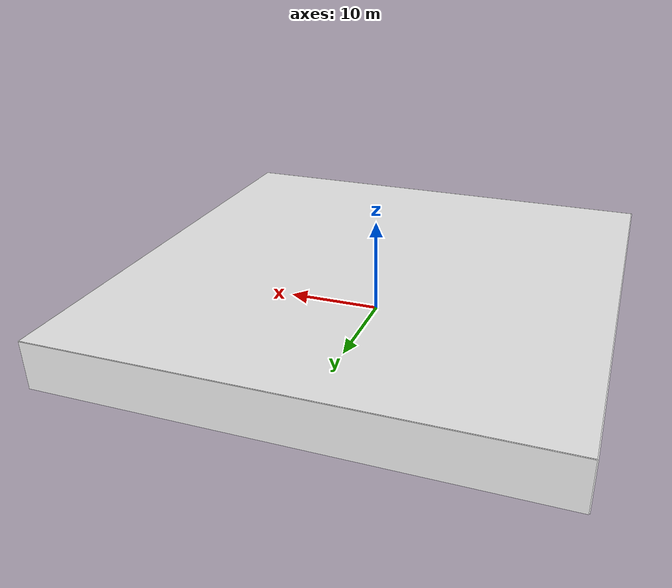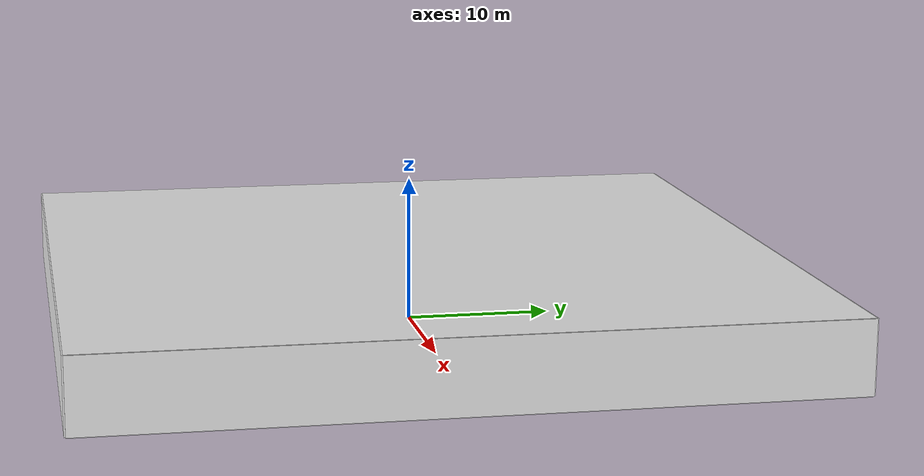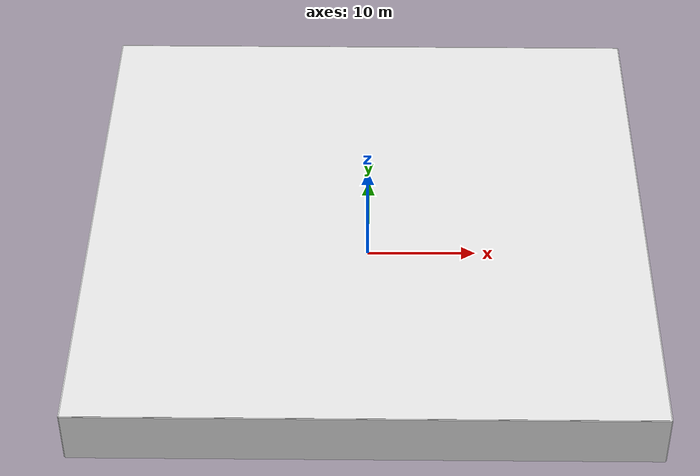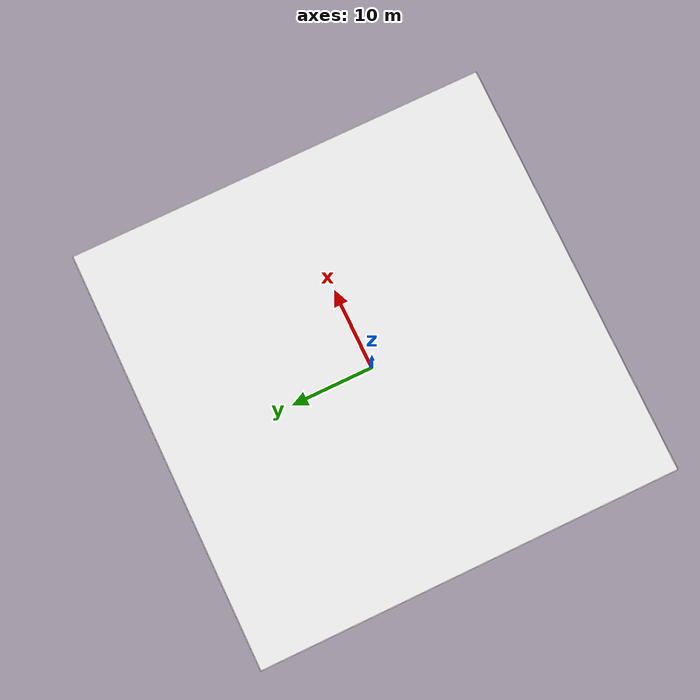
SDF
<?xml version="1.0" ?>
<sdf version="1.9">
  <world name="gps_denied_area">
    <!-- Include the default physics engine -->
    <include>
      <uri>model://ground_plane</uri>
    </include>

    <!-- Indoor lighting -->
    <light name="ceiling_light" type="directional">
      <cast_shadows>true</cast_shadows>
      <pose>0 0 8 0 0 0</pose>
      <diffuse>0.9 0.9 0.9 1</diffuse>
      <specular>0.1 0.1 0.1 1</specular>
      <attenuation>
        <range>50</range>
        <constant>0.9</constant>
        <linear>0.01</linear>
        <quadratic>0.001</quadratic>
      </attenuation>
      <direction>0 0 -1</direction>
    </light>

    <!-- Additional spot lights for better illumination -->
    <light name="spot_light_1" type="spot">
      <pose>10 10 6 0 0 0</pose>
      <diffuse>0.8 0.8 0.8 1</diffuse>
      <specular>0.1 0.1 0.1 1</specular>
      <attenuation>
        <range>20</range>
        <constant>0.9</constant>
        <linear>0.01</linear>
        <quadratic>0.001</quadratic>
      </attenuation>
      <direction>0 0 -1</direction>
      <spot>
        <inner_angle>0.6</inner_angle>
        <outer_angle>1.0</outer_angle>
        <falloff>1.0</falloff>
      </spot>
    </light>

    <light name="spot_light_2" type="spot">
      <pose>-10 -10 6 0 0 0</pose>
      <diffuse>0.8 0.8 0.8 1</diffuse>
      <specular>0.1 0.1 0.1 1</specular>
      <attenuation>
        <range>20</range>
        <constant>0.9</constant>
        <linear>0.01</linear>
        <quadratic>0.001</quadratic>
      </attenuation>
      <direction>0 0 -1</direction>
      <spot>
        <inner_angle>0.6</inner_angle>
        <outer_angle>1.0</outer_angle>
        <falloff>1.0</falloff>
      </spot>
    </light>

    <!-- Warehouse floor -->
    <model name="warehouse_floor">
      <static>true</static>
      <pose>0 0 0 0 0 0</pose>
      <link name="link">
        <collision name="collision">
          <geometry>
            <plane>
              <normal>0 0 1</normal>
              <size>50 50</size>
            </plane>
          </geometry>
        </collision>
        <visual name="visual">
          <geometry>
            <plane>
              <normal>0 0 1</normal>
              <size>50 50</size>
            </plane>
          </geometry>
          <material>
            <ambient>0.8 0.8 0.8 1</ambient>
            <diffuse>0.8 0.8 0.8 1</diffuse>
            <specular>0.1 0.1 0.1 1</specular>
          </material>
        </visual>
      </link>
    </model>

    <!-- Warehouse walls with textures for visual SLAM -->
    <model name="wall_north">
      <pose>0 25 2.5 0 0 0</pose>
      <static>true</static>
      <link name="link">
        <collision name="collision">
          <geometry>
            <box>
              <size>50 0.2 5</size>
            </box>
          </geometry>
        </collision>
        <visual name="visual">
          <geometry>
            <box>
              <size>50 0.2 5</size>
            </box>
          </geometry>
          <material>
            <ambient>0.9 0.9 0.9 1</ambient>
            <diffuse>0.9 0.9 0.9 1</diffuse>
          </material>
        </visual>
      </link>
    </model>

    <model name="wall_south">
      <pose>0 -25 2.5 0 0 0</pose>
      <static>true</static>
      <link name="link">
        <collision name="collision">
          <geometry>
            <box>
              <size>50 0.2 5</size>
            </box>
          </geometry>
        </collision>
        <visual name="visual">
          <geometry>
            <box>
              <size>50 0.2 5</size>
            </box>
          </geometry>
          <material>
            <ambient>0.9 0.9 0.9 1</ambient>
            <diffuse>0.9 0.9 0.9 1</diffuse>
          </material>
        </visual>
      </link>
    </model>

    <model name="wall_east">
      <pose>25 0 2.5 0 0 0</pose>
      <static>true</static>
      <link name="link">
        <collision name="collision">
          <geometry>
            <box>
              <size>0.2 50 5</size>
            </box>
          </geometry>
        </collision>
        <visual name="visual">
          <geometry>
            <box>
              <size>0.2 50 5</size>
            </box>
          </geometry>
          <material>
            <ambient>0.9 0.9 0.9 1</ambient>
            <diffuse>0.9 0.9 0.9 1</diffuse>
          </material>
        </visual>
      </link>
    </model>

    <model name="wall_west">
      <pose>-25 0 2.5 0 0 0</pose>
      <static>true</static>
      <link name="link">
        <collision name="collision">
          <geometry>
            <box>
              <size>0.2 50 5</size>
            </box>
          </geometry>
        </collision>
        <visual name="visual">
          <geometry>
            <box>
              <size>0.2 50 5</size>
            </box>
          </geometry>
          <material>
            <ambient>0.9 0.9 0.9 1</ambient>
            <diffuse>0.9 0.9 0.9 1</diffuse>
          </material>
        </visual>
      </link>
    </model>

    <!-- Ceiling -->
    <model name="ceiling">
      <pose>0 0 5 0 0 0</pose>
      <static>true</static>
      <link name="link">
        <collision name="collision">
          <geometry>
            <plane>
              <normal>0 0 -1</normal>
              <size>50 50</size>
            </plane>
          </geometry>
        </collision>
        <visual name="visual">
          <geometry>
            <plane>
              <normal>0 0 -1</normal>
              <size>50 50</size>
            </plane>
          </geometry>
          <material>
            <ambient>0.95 0.95 0.95 1</ambient>
            <diffuse>0.95 0.95 0.95 1</diffuse>
          </material>
        </visual>
      </link>
    </model>

    <!-- Warehouse obstacles and clutter -->
    <model name="shelf_1">
      <pose>10 10 1 0 0 0</pose>
      <static>true</static>
      <link name="link">
        <collision name="collision">
          <geometry>
            <box>
              <size>2 0.5 2</size>
            </box>
          </geometry>
        </collision>
        <visual name="visual">
          <geometry>
            <box>
              <size>2 0.5 2</size>
            </box>
          </geometry>
          <material>
            <ambient>0.6 0.4 0.2 1</ambient>
            <diffuse>0.6 0.4 0.2 1</diffuse>
          </material>
        </visual>
      </link>
    </model>

    <model name="shelf_2">
      <pose>-10 15 1 0 0 0</pose>
      <static>true</static>
      <link name="link">
        <collision name="collision">
          <geometry>
            <box>
              <size>2 0.5 2</size>
            </box>
          </geometry>
        </collision>
        <visual name="visual">
          <geometry>
            <box>
              <size>2 0.5 2</size>
            </box>
          </geometry>
          <material>
            <ambient>0.6 0.4 0.2 1</ambient>
            <diffuse>0.6 0.4 0.2 1</diffuse>
          </material>
        </visual>
      </link>
    </model>

    <model name="box_1">
      <pose>5 -5 0.3 0 0 0</pose>
      <static>true</static>
      <link name="link">
        <collision name="collision">
          <geometry>
            <box>
              <size>0.8 0.8 0.6</size>
            </box>
          </geometry>
        </collision>
        <visual name="visual">
          <geometry>
            <box>
              <size>0.8 0.8 0.6</size>
            </box>
          </geometry>
          <material>
            <ambient>0.8 0.2 0.2 1</ambient>
            <diffuse>0.8 0.2 0.2 1</diffuse>
          </material>
        </visual>
      </link>
    </model>

    <model name="box_2">
      <pose>-5 -10 0.3 0 0 0</pose>
      <static>true</static>
      <link name="link">
        <collision name="collision">
          <geometry>
            <box>
              <size>0.6 0.6 0.4</size>
            </box>
          </geometry>
        </collision>
        <visual name="visual">
          <geometry>
            <box>
              <size>0.6 0.6 0.4</size>
            </box>
          </geometry>
          <material>
            <ambient>0.2 0.2 0.8 1</ambient>
            <diffuse>0.2 0.2 0.8 1</diffuse>
          </material>
        </visual>
      </link>
    </model>

    <model name="box_3">
      <pose>15 -15 0.3 0 0 0</pose>
      <static>true</static>
      <link name="link">
        <collision name="collision">
          <geometry>
            <box>
              <size>1 1 0.8</size>
            </box>
          </geometry>
        </collision>
        <visual name="visual">
          <geometry>
            <box>
              <size>1 1 0.8</size>
            </box>
          </geometry>
          <material>
            <ambient>0.2 0.8 0.2 1</ambient>
            <diffuse>0.2 0.8 0.2 1</diffuse>
          </material>
        </visual>
      </link>
    </model>

    <!-- Pipes and conduits for visual features -->
    <model name="pipe_1">
      <pose>0 0 3 0 1.57 0</pose>
      <static>true</static>
      <link name="link">
        <collision name="collision">
          <geometry>
            <cylinder>
              <radius>0.1</radius>
              <length>20</length>
            </cylinder>
          </geometry>
        </collision>
        <visual name="visual">
          <geometry>
            <cylinder>
              <radius>0.1</radius>
              <length>20</length>
            </cylinder>
          </geometry>
          <material>
            <ambient>0.3 0.3 0.3 1</ambient>
            <diffuse>0.3 0.3 0.3 1</diffuse>
          </material>
        </visual>
      </link>
    </model>

    <model name="pipe_2">
      <pose>0 0 3 1.57 0 0</pose>
      <static>true</static>
      <link name="link">
        <collision name="collision">
          <geometry>
            <cylinder>
              <radius>0.1</radius>
              <length>20</length>
            </cylinder>
          </geometry>
        </collision>
        <visual name="visual">
          <geometry>
            <cylinder>
              <radius>0.1</radius>
              <length>20</length>
            </cylinder>
          </geometry>
          <material>
            <ambient>0.3 0.3 0.3 1</ambient>
            <diffuse>0.3 0.3 0.3 1</diffuse>
          </material>
        </visual>
      </link>
    </model>

    <!-- Textured panels for visual features -->
    <model name="texture_panel_1">
      <pose>12 0 2.5 0 0 0</pose>
      <static>true</static>
      <link name="link">
        <collision name="collision">
          <geometry>
            <box>
              <size>0.1 8 3</size>
            </box>
          </geometry>
        </collision>
        <visual name="visual">
          <geometry>
            <box>
              <size>0.1 8 3</size>
            </box>
          </geometry>
          <material>
            <ambient>0.7 0.5 0.3 1</ambient>
            <diffuse>0.7 0.5 0.3 1</diffuse>
          </material>
        </visual>
      </link>
    </model>

    <model name="texture_panel_2">
      <pose>-12 0 2.5 0 0 0</pose>
      <static>true</static>
      <link name="link">
        <collision name="collision">
          <geometry>
            <box>
              <size>0.1 8 3</size>
            </box>
          </geometry>
        </collision>
        <visual name="visual">
          <geometry>
            <box>
              <size>0.1 8 3</size>
            </box>
          </geometry>
          <material>
            <ambient>0.3 0.5 0.7 1</ambient>
            <diffuse>0.3 0.5 0.7 1</diffuse>
          </material>
        </visual>
      </link>
    </model>

    <!-- Exit/entrance markers -->
    <model name="exit_marker">
      <pose>0 -24 0.1 0 0 0</pose>
      <static>true</static>
      <link name="link">
        <visual name="visual">
          <geometry>
            <box>
              <size>2 0.1 0.2</size>
            </box>
          </geometry>
          <material>
            <ambient>1 1 0 1</ambient>
            <diffuse>1 1 0 1</diffuse>
          </material>
        </visual>
      </link>
    </model>

    <!-- Physics settings -->
    <physics name="default_physics" default="0" type="ode">
      <gravity>0 0 -9.8066</gravity>
      <ode>
        <solver>
          <type>quick</type>
          <iters>150</iters>
          <precon_iters>0</precon_iters>
          <sor>1.400000</sor>
          <use_dynamic_moi_rescaling>0</use_dynamic_moi_rescaling>
        </solver>
        <constraints>
          <cfm>0.00001</cfm>
          <erp>0.2</erp>
          <contact_max_correcting_vel>2000.000000</contact_max_correcting_vel>
          <contact_surface_layer>0.01000</contact_surface_layer>
        </constraints>
      </ode>
      <max_step_size>0.004</max_step_size>
      <real_time_factor>1</real_time_factor>
      <real_time_update_rate>250</real_time_update_rate>
    </physics>

    <!-- GUI settings -->
    <gui fullscreen='0'>
      <camera name='user_camera'>
        <pose frame=''>0 0 8 0 0 0</pose>
        <view_controller>orbit</view_controller>
        <projection_type>perspective</projection_type>
      </camera>
    </gui>
  </world>
</sdf>
